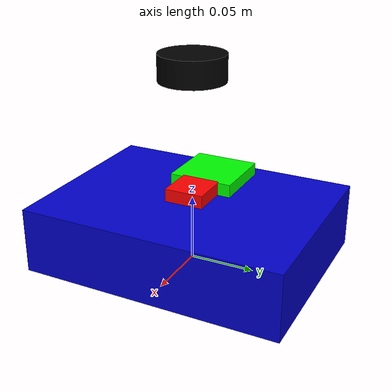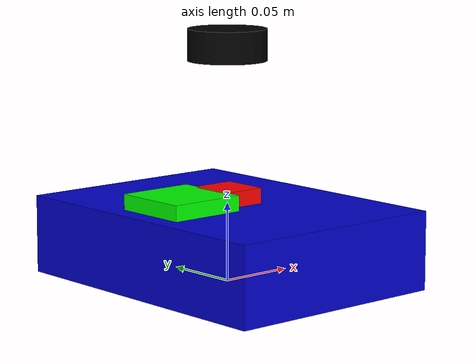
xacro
<?xml version="1.0" ?>
<robot name="uwb_robot" xmlns:xacro="http://www.ros.org/wiki/xacro">

  <!-- Define robot dimensions and properties -->
  <xacro:property name="base_length" value="0.15" />
  <xacro:property name="base_width" value="0.20" />
  <xacro:property name="base_height" value="0.05" />
  <xacro:property name="wheel_radius" value="0.05" />
  <xacro:property name="wheel_width" value="0.04" />

  <!-- Base Footprint Link -->
  <link name="base_footprint">
  </link>

  <!-- Base Link (main body of the robot) -->
  <link name="base_link">
    <visual>
      <geometry>
        <box size="${base_length} ${base_width} ${base_height}" />
      </geometry>
      <material name="blue">
        <color rgba="0 0 0.8 1" />
      </material>
    </visual>
    <collision>
      <geometry>
        <box size="${base_length} ${base_width} ${base_height}" />
      </geometry>
    </collision>
    <inertial>
      <mass value="5.0" />
      <inertia ixx="0.1" ixy="0" ixz="0" iyy="0.1" iyz="0" izz="0.1" />
    </inertial>
  </link>

  <!-- Joint connecting base_footprint to base_link -->
  <joint name="base_footprint_joint" type="fixed">
    <parent link="base_footprint" />
    <child link="base_link" />
    <origin xyz="0 0 ${base_height/2}" rpy="0 0 0" />
  </joint>

  <!-- LiDAR Link -->
  <link name="laser_link">
    <visual>
      <geometry>
        <cylinder radius="0.025" length="0.02" />
      </geometry>
      <material name="black">
        <color rgba="0 0 0 1" />
      </material>
    </visual>
    <collision>
      <geometry>
        <cylinder radius="0.05" length="0.04" />
      </geometry>
    </collision>
    <inertial>
      <mass value="0.1" />
      <inertia ixx="0.001" ixy="0" ixz="0" iyy="0.001" iyz="0" izz="0.001" />
    </inertial>
  </link>

  <!-- Joint connecting base_link to laser_link -->
  <joint name="laser_joint" type="fixed">
    <parent link="base_link" />
    <child link="laser_link" />
    <!-- Position LiDAR at the front-top of the robot -->
    <origin xyz="0 0 ${base_height/2 + 0.1}" rpy="0 0 0" />
  </joint>

  <!-- IMU Link -->
  <link name="imu_link">
    <visual>
      <geometry>
        <box size="0.03 0.03 0.01" />
      </geometry>
      <material name="red">
        <color rgba="1 0 0 1" />
      </material>
    </visual>
    <collision>
      <geometry>
        <box size="0.03 0.03 0.01" />
      </geometry>
    </collision>
    <inertial>
      <mass value="0.01" />
      <inertia ixx="0.0001" ixy="0" ixz="0" iyy="0.0001" iyz="0" izz="0.0001" />
    </inertial>
  </link>

  <!-- Joint connecting base_link to imu_link -->
  <joint name="imu_joint" type="fixed">
    <parent link="base_link" />
    <child link="imu_link" />
    <!-- Position IMU at the center-top of the robot -->
    <origin xyz="0 0 ${base_height/2 + 0.005}" rpy="0 0 0" />
  </joint>

  <!-- UWB Link -->
  <link name="uwb_link">
    <visual>
      <geometry>
        <box size="0.05 0.05 0.01" />
      </geometry>
      <material name="green">
        <color rgba="0 1 0 1" />
      </material>
    </visual>
    <collision>
      <geometry>
        <box size="0.05 0.05 0.01" />
      </geometry>
    </collision>
    <inertial>
      <mass value="0.05" />
      <inertia ixx="0.0001" ixy="0" ixz="0" iyy="0.0001" iyz="0" izz="0.0001" />
    </inertial>
  </link>

  <!-- Joint connecting base_link to uwb_link -->
  <joint name="uwb_joint" type="fixed">
    <parent link="base_link" />
    <child link="uwb_link" />
    <!-- Position UWB at the back-top of the robot -->
    <origin xyz="${-base_length/4} 0 ${base_height/2 + 0.005}" rpy="0 0 0" />
  </joint>

</robot>
